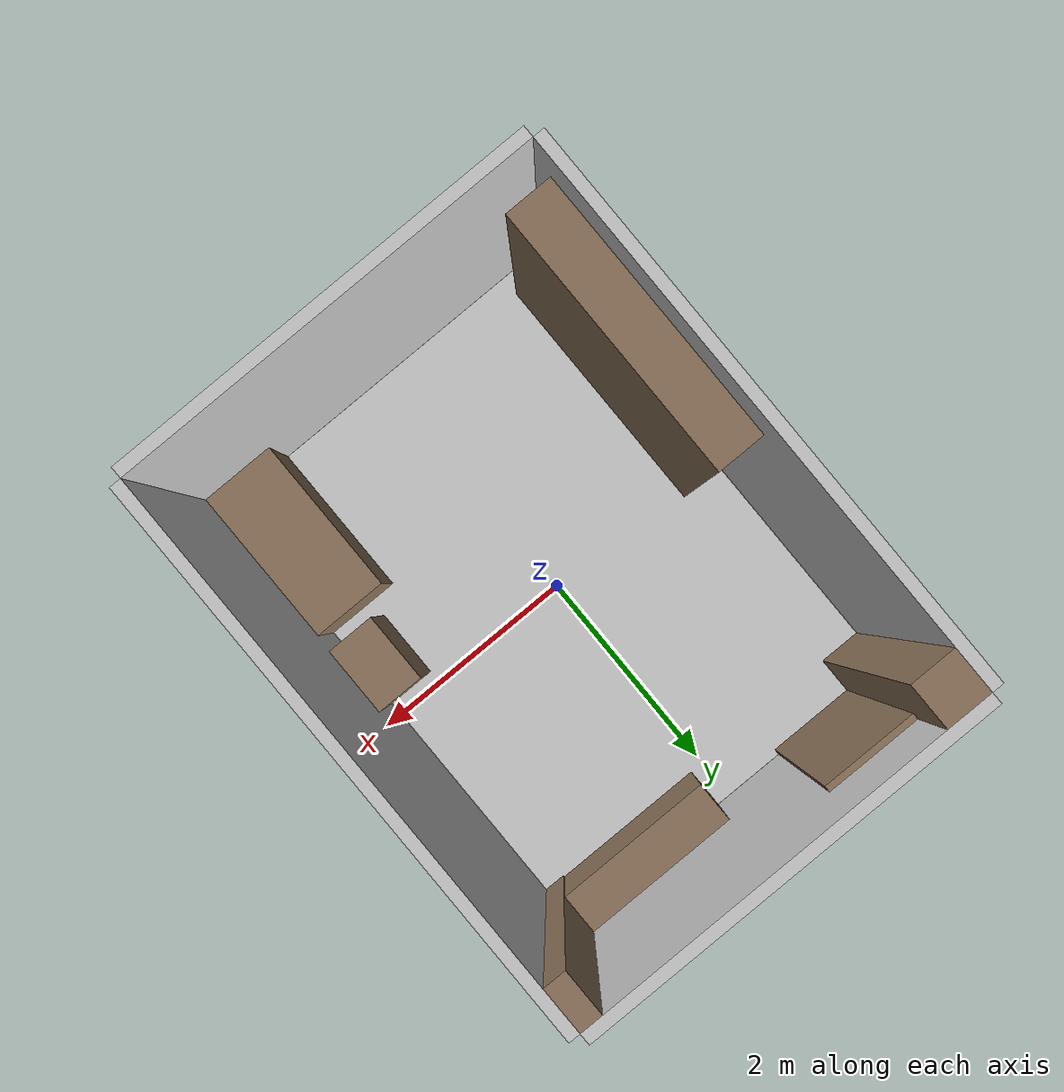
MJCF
<mujoco model="room128_arena">
  <asset>
    <texture builtin="gradient" height="256" rgb1=".9 .9 1." rgb2=".2 .3 .4" type="skybox" width="256"/>
    <texture file="../textures/light-gray-floor-tile.png" type="2d" name="texplane"/>
    <material name="floorplane" reflectance="0.01" shininess="0.0" specular="0.0" texrepeat="8 8" texture="texplane" texuniform="true"/>
    <texture file="../textures/light-gray-plaster.png" type="2d" name="tex-light-gray-plaster"/>
    <material name="walls_mat" reflectance="0.0" shininess="0.1" specular="0.1" texrepeat="6 6" texture="tex-light-gray-plaster" texuniform="true"/>
    <material name="furniture_mat" reflectance="0.0" shininess="0.2" specular="0.2" rgba="0.55 0.45 0.35 1"/>
  </asset>
  <worldbody>
    <geom condim="3" group="1" material="floorplane" name="floor" pos="0 0 0" size="1.8325 2.4675 .125" type="plane"/>
    <geom name="room128_wallfront" type="box" pos="0.0000 -2.5175 1.4000" size="1.8325 0.0500 1.4000" group="1" material="walls_mat" condim="3" friction="1 0.005 0.0001"/>
    <geom name="room128_wallback" type="box" pos="0.0000 2.5175 1.4000" size="1.8325 0.0500 1.4000" group="1" material="walls_mat" condim="3" friction="1 0.005 0.0001"/>
    <geom name="room128_wallleft" type="box" pos="-1.8825 0.0000 1.4000" size="0.0500 2.4675 1.4000" group="1" material="walls_mat" condim="3" friction="1 0.005 0.0001"/>
    <geom name="room128_wallright" type="box" pos="1.8825 0.0000 1.4000" size="0.0500 2.4675 1.4000" group="1" material="walls_mat" condim="3" friction="1 0.005 0.0001"/>
    <geom name="room128_door" type="box" pos="-1.0075 2.4625 1.0500" size="0.4250 0.0500 1.0500" group="1" material="furniture_mat" condim="3" friction="1 0.005 0.0001"/>
    <geom name="room128_cabinet" type="box" pos="1.6050 -0.4650 0.4100" size="0.2275 0.3325 0.4100" group="1" material="furniture_mat" condim="3" friction="1 0.005 0.0001"/>
    <geom name="room128_storage_cabinet" type="box" pos="-1.6225 -1.0825 1.2050" size="0.2100 1.2000 1.2050" group="1" material="furniture_mat" condim="3" friction="1 0.005 0.0001"/>
    <geom name="room128_desk" type="box" pos="0.8825 2.4325 0.3700" size="0.7500 0.3500 0.3700" group="1" material="furniture_mat" condim="3" friction="1 0.005 0.0001"/>
    <geom name="room128_desk2" type="box" pos="1.4825 -1.7175 0.3700" size="0.3500 0.7500 0.3700" group="1" material="furniture_mat" condim="3" friction="1 0.005 0.0001"/>
    <geom name="room128_pillar1" type="box" pos="-1.6325 2.2675 1.4000" size="0.2000 0.2000 1.4000" group="1" material="furniture_mat" condim="3" friction="1 0.005 0.0001"/>
    <geom name="room128_pillar2" type="box" pos="1.7325 2.2675 1.4000" size="0.1000 0.2000 1.4000" group="1" material="furniture_mat" condim="3" friction="1 0.005 0.0001"/>
    <light pos="0 0 2.6" dir="0 0 -1" specular="0.2 0.2 0.2" directional="true" castshadow="false"/>
    <light pos="1.2 1.2 2.4" dir="-0.3 -0.3 -1" specular="0.1 0.1 0.1" directional="true" castshadow="false"/>
    <camera mode="fixed" name="frontview" pos="1.6 0 1.45" quat="0.56 0.43 0.43 0.56"/>
    <camera mode="fixed" name="birdview" pos="0 0 6.2" quat="0.7071 0 0 0.7071"/>
    <camera mode="fixed" name="agentview" pos="0.5 0 1.35" quat="0.653 0.271 0.271 0.653"/>
    <camera mode="fixed" name="sideview" pos="-0.0565 1.2761 1.4880" quat="0.0099 0.0069 0.5912 0.8064"/>
    <camera mode="fixed" name="roomview" pos="-1.55 -2.15 2.35" quat="0.780 0.386 0.190 0.455"/>
  </worldbody>
</mujoco>
